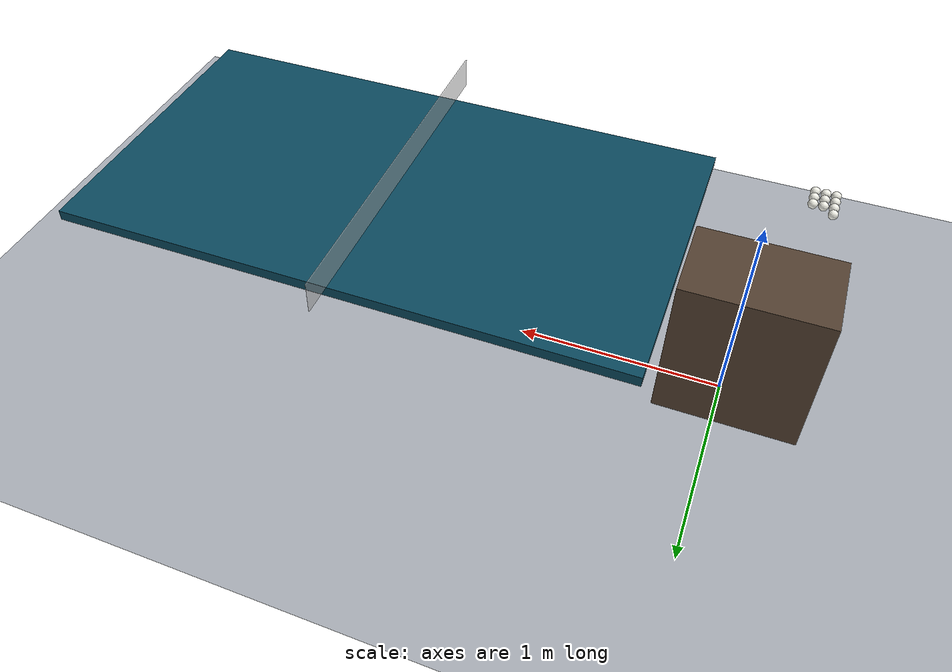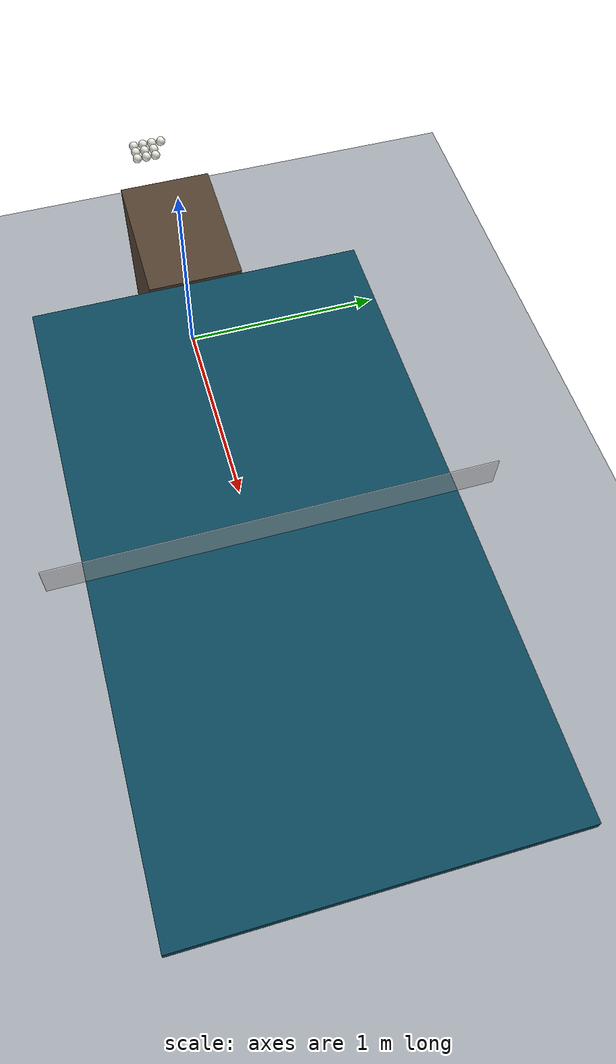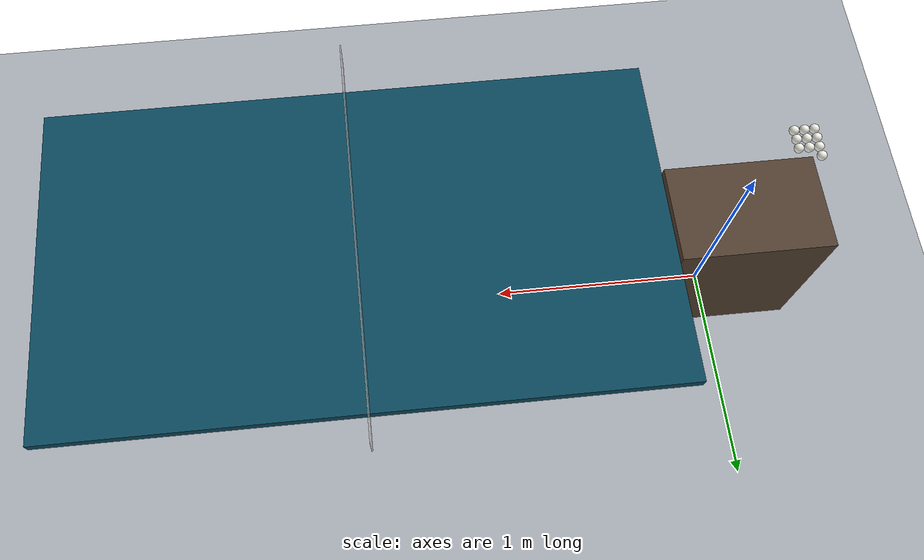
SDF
<sdf version="1.8">
 <world name="full_10">
  <physics name="1ms" type="ignored">
   <max_step_size>0.001</max_step_size>
   <real_time_factor>1</real_time_factor>
  </physics>
  <gravity>0 0 -9.81</gravity>
  <plugin filename="ignition-gazebo-physics-system" name="ignition::gazebo::systems::Physics"/>
  <plugin filename="ignition-gazebo-user-commands-system" name="ignition::gazebo::systems::UserCommands"/>
  <plugin filename="ignition-gazebo-scene-broadcaster-system" name="ignition::gazebo::systems::SceneBroadcaster"/>
  <scene>
   <ambient>0.6 0.6 0.6 1</ambient>
   <background>0.85 0.89 0.94 1</background>
   <shadows>true</shadows>
  </scene>
  <light name="sun" type="directional">
   <pose>0 0 6 0 0 0</pose>
   <direction>-0.4 0.3 -1</direction>
   <diffuse>0.9 0.9 0.9 1</diffuse>
   <specular>0.2 0.2 0.2 1</specular>
  </light>
  <model name="ground">
   <static>true</static>
   <link name="ground_link">
    <collision name="floor">
     <geometry><plane><normal>0 0 1</normal><size>20 20</size></plane></geometry>
    </collision>
    <visual name="floor_visual">
     <geometry><plane><normal>0 0 1</normal><size>20 20</size></plane></geometry>
     <material><ambient>0.65 0.67 0.7 1</ambient><diffuse>0.65 0.67 0.7 1</diffuse></material>
    </visual>
   </link>
  </model>
  <model name="table">
   <static>true</static>
   <pose>1.6700000000000002 0.0 0.735 0.0 0.0 0.0</pose>
   <link name="top">
    <collision name="top">
     <geometry><box><size>2.74 1.525 0.05</size></box></geometry>
     <surface>
      <bounce><restitution_coefficient>0.85</restitution_coefficient><threshold>0.1</threshold></bounce>
      <friction><ode><mu>0.3</mu><mu2>0.3</mu2></ode></friction>
     </surface>
    </collision>
    <visual name="top_visual">
     <geometry><box><size>2.74 1.525 0.05</size></box></geometry>
     <material><ambient>0.04 0.28 0.36 1</ambient><diffuse>0.04 0.28 0.36 1</diffuse></material>
    </visual>
   </link>
  </model>
  <model name="net">
   <static>true</static>
   <pose>1.6700000000000002 0.0 0.83625 0.0 0.0 0.0</pose>
   <link name="net_link">
    <collision name="net"><geometry><box><size>0.005 1.83 0.1525</size></box></geometry></collision>
    <visual name="net_visual">
     <geometry><box><size>0.005 1.83 0.1525</size></box></geometry>
     <material><ambient>0.8 0.8 0.8 1</ambient><diffuse>0.8 0.8 0.8 1</diffuse></material>
     <transparency>0.45</transparency>
    </visual>
   </link>
  </model>
  <model name="launcher_bench">
   <static>true</static>
   <link name="bench">
    <collision name="bench">
     <pose>-0.0525 0 0.3795 0 0 0</pose>
     <geometry><box><size>0.675 0.44 0.759</size></box></geometry>
     <surface>
      <friction><ode><mu>0.3</mu><mu2>0.3</mu2></ode></friction>
      <bounce><restitution_coefficient>0.1</restitution_coefficient><threshold>0.1</threshold></bounce>
     </surface>
    </collision>
    <visual name="bench_visual">
     <pose>-0.0525 0 0.3795 0 0 0</pose>
     <geometry><box><size>0.675 0.44 0.759</size></box></geometry>
     <material><ambient>.32 .25 .19 1</ambient><diffuse>.32 .25 .19 1</diffuse></material>
    </visual>
   </link>
  </model>
  <model name="inventory_ball_001">
   <static>false</static>
   <pose>-0.23351634392092527 -0.14228499354686641 1.1430650175910217 0 0 0</pose>
   <link name="ball_link">
    <inertial>
     <mass>0.0027000000000000001</mass>
     <inertia>
      <ixx>7.1999999999999999e-07</ixx>
      <iyy>7.1999999999999999e-07</iyy>
      <izz>7.1999999999999999e-07</izz>
      <ixy>0</ixy>
      <ixz>0</ixz>
      <iyz>0</iyz>
     </inertia>
    </inertial>
    <collision name="ball_collision">
     <geometry><sphere><radius>0.02</radius></sphere></geometry>
     <surface>
      <friction><ode><mu>0.3</mu><mu2>0.3</mu2></ode></friction>
      <bounce><restitution_coefficient>0.8</restitution_coefficient><threshold>0.01</threshold></bounce>
     </surface>
    </collision>
    <visual name="ball_visual">
     <geometry><sphere><radius>0.02</radius></sphere></geometry>
     <material><ambient>0.96 0.96 0.92 1</ambient><diffuse>0.96 0.96 0.92 1</diffuse></material>
    </visual>
   </link>
  </model>
  <model name="inventory_ball_002">
   <static>false</static>
   <pose>-0.19216607355711071 -0.1418581172715016 1.143306019692454 0 0 0</pose>
   <link name="ball_link">
    <inertial>
     <mass>0.0027000000000000001</mass>
     <inertia>
      <ixx>7.1999999999999999e-07</ixx>
      <iyy>7.1999999999999999e-07</iyy>
      <izz>7.1999999999999999e-07</izz>
      <ixy>0</ixy>
      <ixz>0</ixz>
      <iyz>0</iyz>
     </inertia>
    </inertial>
    <collision name="ball_collision">
     <geometry><sphere><radius>0.02</radius></sphere></geometry>
     <surface>
      <friction><ode><mu>0.3</mu><mu2>0.3</mu2></ode></friction>
      <bounce><restitution_coefficient>0.8</restitution_coefficient><threshold>0.01</threshold></bounce>
     </surface>
    </collision>
    <visual name="ball_visual">
     <geometry><sphere><radius>0.02</radius></sphere></geometry>
     <material><ambient>0.96 0.96 0.92 1</ambient><diffuse>0.96 0.96 0.92 1</diffuse></material>
    </visual>
   </link>
  </model>
  <model name="inventory_ball_003">
   <static>false</static>
   <pose>-0.15016469225937706 -0.14224783670042238 1.1431531530918113 0 0 0</pose>
   <link name="ball_link">
    <inertial>
     <mass>0.0027000000000000001</mass>
     <inertia>
      <ixx>7.1999999999999999e-07</ixx>
      <iyy>7.1999999999999999e-07</iyy>
      <izz>7.1999999999999999e-07</izz>
      <ixy>0</ixy>
      <ixz>0</ixz>
      <iyz>0</iyz>
     </inertia>
    </inertial>
    <collision name="ball_collision">
     <geometry><sphere><radius>0.02</radius></sphere></geometry>
     <surface>
      <friction><ode><mu>0.3</mu><mu2>0.3</mu2></ode></friction>
      <bounce><restitution_coefficient>0.8</restitution_coefficient><threshold>0.01</threshold></bounce>
     </surface>
    </collision>
    <visual name="ball_visual">
     <geometry><sphere><radius>0.02</radius></sphere></geometry>
     <material><ambient>0.96 0.96 0.92 1</ambient><diffuse>0.96 0.96 0.92 1</diffuse></material>
    </visual>
   </link>
  </model>
  <model name="inventory_ball_004">
   <static>false</static>
   <pose>-0.23388212166833716 -0.10056881721511786 1.1432032131728622 0 0 0</pose>
   <link name="ball_link">
    <inertial>
     <mass>0.0027000000000000001</mass>
     <inertia>
      <ixx>7.1999999999999999e-07</ixx>
      <iyy>7.1999999999999999e-07</iyy>
      <izz>7.1999999999999999e-07</izz>
      <ixy>0</ixy>
      <ixz>0</ixz>
      <iyz>0</iyz>
     </inertia>
    </inertial>
    <collision name="ball_collision">
     <geometry><sphere><radius>0.02</radius></sphere></geometry>
     <surface>
      <friction><ode><mu>0.3</mu><mu2>0.3</mu2></ode></friction>
      <bounce><restitution_coefficient>0.8</restitution_coefficient><threshold>0.01</threshold></bounce>
     </surface>
    </collision>
    <visual name="ball_visual">
     <geometry><sphere><radius>0.02</radius></sphere></geometry>
     <material><ambient>0.96 0.96 0.92 1</ambient><diffuse>0.96 0.96 0.92 1</diffuse></material>
    </visual>
   </link>
  </model>
  <model name="inventory_ball_005">
   <static>false</static>
   <pose>-0.19228407841818967 -0.10058069740958803 1.1432899306626678 0 0 0</pose>
   <link name="ball_link">
    <inertial>
     <mass>0.0027000000000000001</mass>
     <inertia>
      <ixx>7.1999999999999999e-07</ixx>
      <iyy>7.1999999999999999e-07</iyy>
      <izz>7.1999999999999999e-07</izz>
      <ixy>0</ixy>
      <ixz>0</ixz>
      <iyz>0</iyz>
     </inertia>
    </inertial>
    <collision name="ball_collision">
     <geometry><sphere><radius>0.02</radius></sphere></geometry>
     <surface>
      <friction><ode><mu>0.3</mu><mu2>0.3</mu2></ode></friction>
      <bounce><restitution_coefficient>0.8</restitution_coefficient><threshold>0.01</threshold></bounce>
     </surface>
    </collision>
    <visual name="ball_visual">
     <geometry><sphere><radius>0.02</radius></sphere></geometry>
     <material><ambient>0.96 0.96 0.92 1</ambient><diffuse>0.96 0.96 0.92 1</diffuse></material>
    </visual>
   </link>
  </model>
  <model name="inventory_ball_006">
   <static>false</static>
   <pose>-0.15037303511163805 -0.1005677356267756 1.1432535594103257 0 0 0</pose>
   <link name="ball_link">
    <inertial>
     <mass>0.0027000000000000001</mass>
     <inertia>
      <ixx>7.1999999999999999e-07</ixx>
      <iyy>7.1999999999999999e-07</iyy>
      <izz>7.1999999999999999e-07</izz>
      <ixy>0</ixy>
      <ixz>0</ixz>
      <iyz>0</iyz>
     </inertia>
    </inertial>
    <collision name="ball_collision">
     <geometry><sphere><radius>0.02</radius></sphere></geometry>
     <surface>
      <friction><ode><mu>0.3</mu><mu2>0.3</mu2></ode></friction>
      <bounce><restitution_coefficient>0.8</restitution_coefficient><threshold>0.01</threshold></bounce>
     </surface>
    </collision>
    <visual name="ball_visual">
     <geometry><sphere><radius>0.02</radius></sphere></geometry>
     <material><ambient>0.96 0.96 0.92 1</ambient><diffuse>0.96 0.96 0.92 1</diffuse></material>
    </visual>
   </link>
  </model>
  <model name="inventory_ball_007">
   <static>false</static>
   <pose>-0.23341434172599332 -0.059096100744193171 1.1433834915510999 0 0 0</pose>
   <link name="ball_link">
    <inertial>
     <mass>0.0027000000000000001</mass>
     <inertia>
      <ixx>7.1999999999999999e-07</ixx>
      <iyy>7.1999999999999999e-07</iyy>
      <izz>7.1999999999999999e-07</izz>
      <ixy>0</ixy>
      <ixz>0</ixz>
      <iyz>0</iyz>
     </inertia>
    </inertial>
    <collision name="ball_collision">
     <geometry><sphere><radius>0.02</radius></sphere></geometry>
     <surface>
      <friction><ode><mu>0.3</mu><mu2>0.3</mu2></ode></friction>
      <bounce><restitution_coefficient>0.8</restitution_coefficient><threshold>0.01</threshold></bounce>
     </surface>
    </collision>
    <visual name="ball_visual">
     <geometry><sphere><radius>0.02</radius></sphere></geometry>
     <material><ambient>0.96 0.96 0.92 1</ambient><diffuse>0.96 0.96 0.92 1</diffuse></material>
    </visual>
   </link>
  </model>
  <model name="inventory_ball_008">
   <static>false</static>
   <pose>-0.19188111636300706 -0.058895849690089208 1.1429932876998874 0 0 0</pose>
   <link name="ball_link">
    <inertial>
     <mass>0.0027000000000000001</mass>
     <inertia>
      <ixx>7.1999999999999999e-07</ixx>
      <iyy>7.1999999999999999e-07</iyy>
      <izz>7.1999999999999999e-07</izz>
      <ixy>0</ixy>
      <ixz>0</ixz>
      <iyz>0</iyz>
     </inertia>
    </inertial>
    <collision name="ball_collision">
     <geometry><sphere><radius>0.02</radius></sphere></geometry>
     <surface>
      <friction><ode><mu>0.3</mu><mu2>0.3</mu2></ode></friction>
      <bounce><restitution_coefficient>0.8</restitution_coefficient><threshold>0.01</threshold></bounce>
     </surface>
    </collision>
    <visual name="ball_visual">
     <geometry><sphere><radius>0.02</radius></sphere></geometry>
     <material><ambient>0.96 0.96 0.92 1</ambient><diffuse>0.96 0.96 0.92 1</diffuse></material>
    </visual>
   </link>
  </model>
  <model name="inventory_ball_009">
   <static>false</static>
   <pose>-0.15012567215667591 -0.058898043272932431 1.1429556475060283 0 0 0</pose>
   <link name="ball_link">
    <inertial>
     <mass>0.0027000000000000001</mass>
     <inertia>
      <ixx>7.1999999999999999e-07</ixx>
      <iyy>7.1999999999999999e-07</iyy>
      <izz>7.1999999999999999e-07</izz>
      <ixy>0</ixy>
      <ixz>0</ixz>
      <iyz>0</iyz>
     </inertia>
    </inertial>
    <collision name="ball_collision">
     <geometry><sphere><radius>0.02</radius></sphere></geometry>
     <surface>
      <friction><ode><mu>0.3</mu><mu2>0.3</mu2></ode></friction>
      <bounce><restitution_coefficient>0.8</restitution_coefficient><threshold>0.01</threshold></bounce>
     </surface>
    </collision>
    <visual name="ball_visual">
     <geometry><sphere><radius>0.02</radius></sphere></geometry>
     <material><ambient>0.96 0.96 0.92 1</ambient><diffuse>0.96 0.96 0.92 1</diffuse></material>
    </visual>
   </link>
  </model>
  <model name="inventory_ball_010">
   <static>false</static>
   <pose>-0.23384197017389993 -0.016991503380191519 1.1432622356188205 0 0 0</pose>
   <link name="ball_link">
    <inertial>
     <mass>0.0027000000000000001</mass>
     <inertia>
      <ixx>7.1999999999999999e-07</ixx>
      <iyy>7.1999999999999999e-07</iyy>
      <izz>7.1999999999999999e-07</izz>
      <ixy>0</ixy>
      <ixz>0</ixz>
      <iyz>0</iyz>
     </inertia>
    </inertial>
    <collision name="ball_collision">
     <geometry><sphere><radius>0.02</radius></sphere></geometry>
     <surface>
      <friction><ode><mu>0.3</mu><mu2>0.3</mu2></ode></friction>
      <bounce><restitution_coefficient>0.8</restitution_coefficient><threshold>0.01</threshold></bounce>
     </surface>
    </collision>
    <visual name="ball_visual">
     <geometry><sphere><radius>0.02</radius></sphere></geometry>
     <material><ambient>0.96 0.96 0.92 1</ambient><diffuse>0.96 0.96 0.92 1</diffuse></material>
    </visual>
   </link>
  </model>
 </world>
</sdf>
